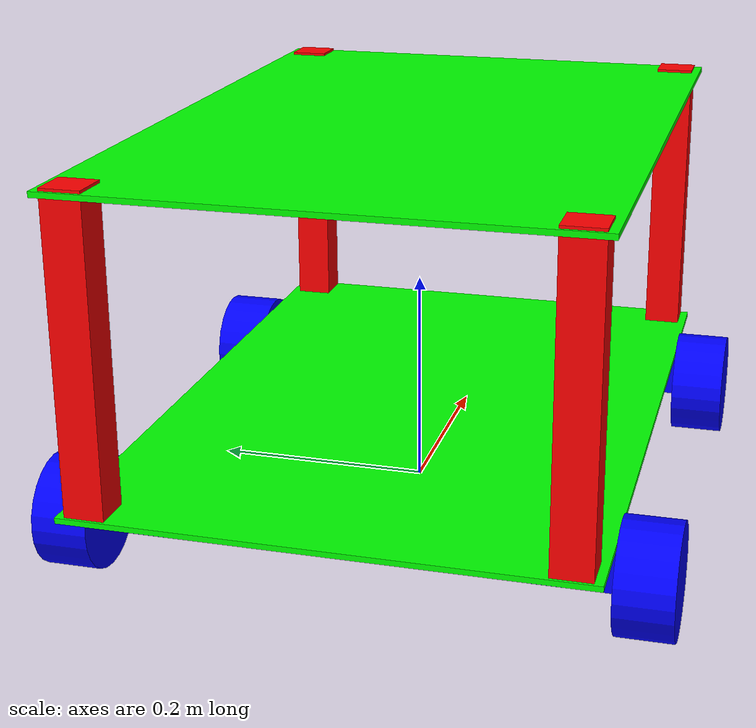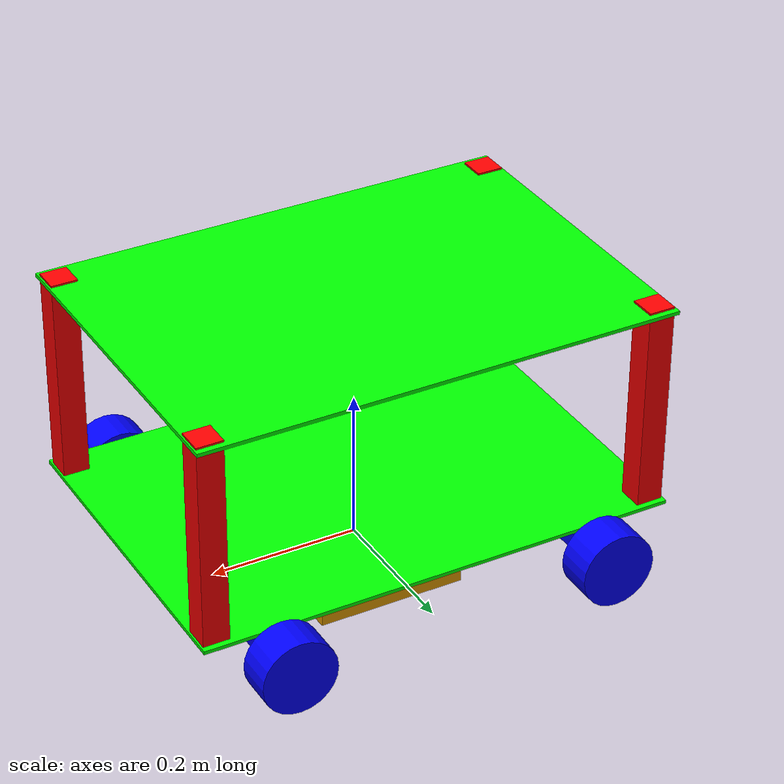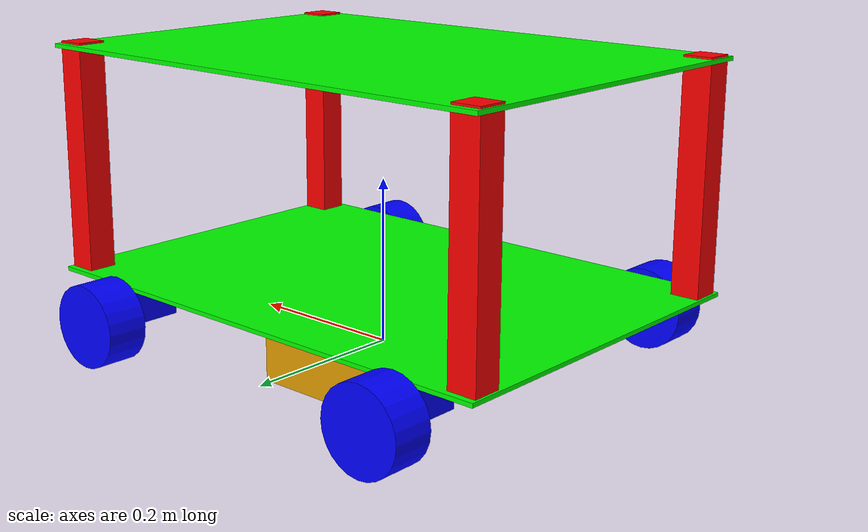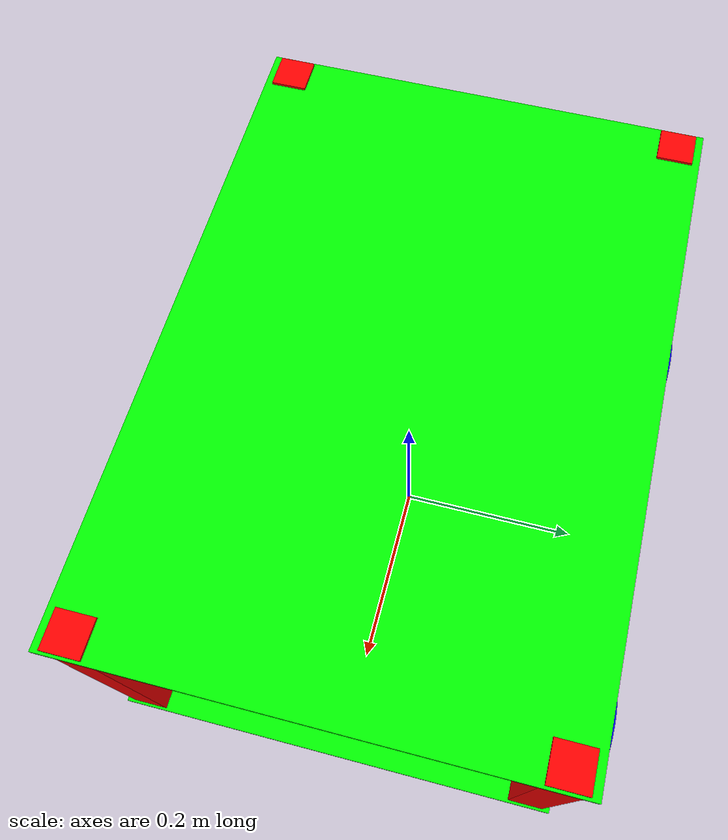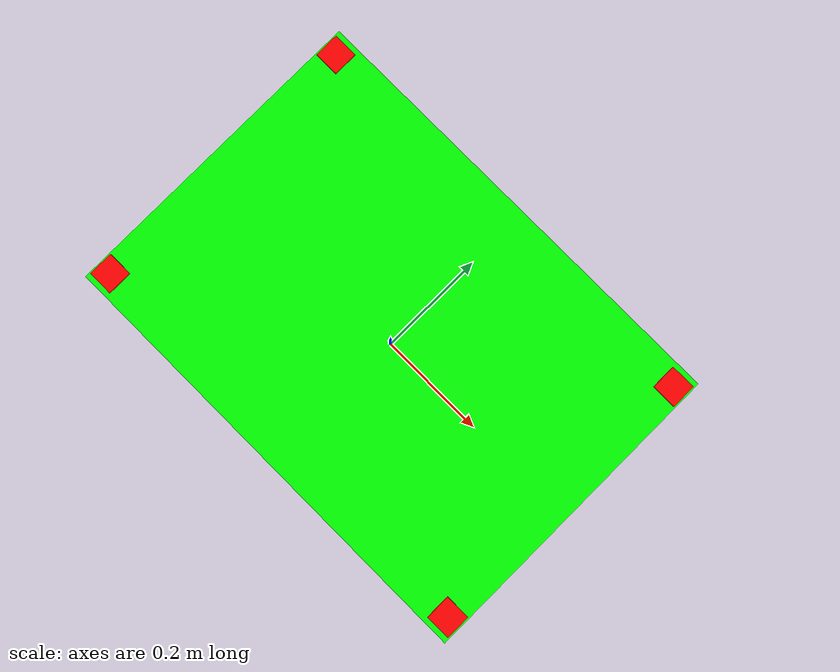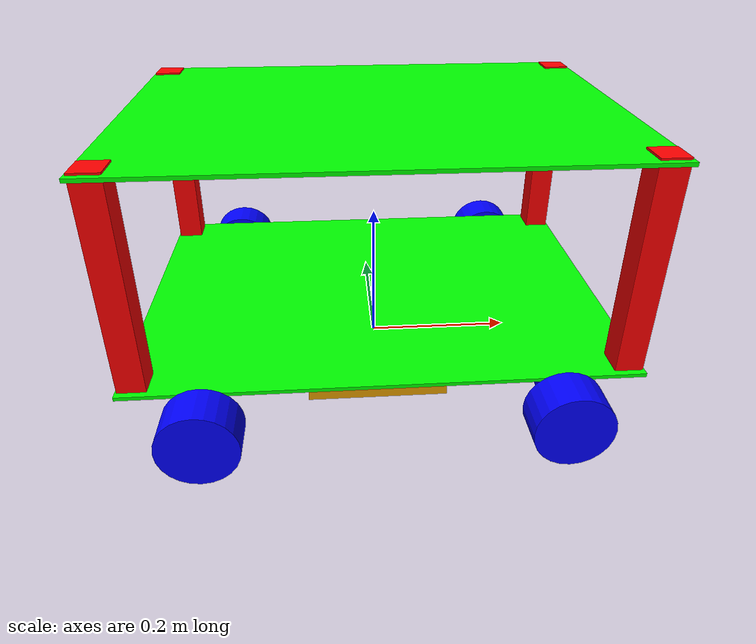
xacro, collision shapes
<?xml version="1.0" ?>

<robot name="robot" xmlns:xacro="http://ros.org/wiki/xacro">

    <link name="base_footprint">
        <collision>
        <origin rpy="0 0 0" xyz="0 0 0.0005"/>
        <geometry>
        <box size="0.2 0.2 0.1"/>
        </geometry>
        </collision>
    </link>

    <joint name="base_joint" type="fixed">
      <origin xyz="0 0 0.075" rpy="0 0 0" />
      <parent link="base_footprint"/>
      <child link="base_link" />
    </joint>

    <link name="base_link">
      <visual>
        <geometry>
	  <box size="0.64 0.45 0.005" />
        </geometry>
        <material name="green">
          <color rgba="0.0 1 0.0 1" />
        </material>
      </visual>
      <collision>
        <geometry>
          <box size="0.64 0.45 0.005" />
        </geometry>
      </collision>
      <inertial>
        <mass value="0.5" />
        <inertia ixx="0.015" ixy="0" ixz="0" iyy="0.0375" iyz="0.0" izz="0.0275" />
      </inertial>
    </link>

    <!-- SECOND_base -->

    <joint name="base_second_joint" type="fixed">
      <origin xyz="0.0 0.0 0.275" rpy="0 0 0" />
      <parent link="base_link"/>
      <child link="base_second_link"/>
    </joint>
    <link name="base_second_link">
      <visual>
        <geometry>
	  <box size="0.64 0.45 0.005" />
        </geometry>
        <material name="green">
          <color rgba="0.0 1 0.0 1" />
        </material>
      </visual>
      <collision>
        <geometry>
          <box size="0.64 0.45 0.005" />
        </geometry>
      </collision>
      <inertial>
        <mass value="0.5" />
        <inertia ixx="0.015" ixy="0" ixz="0" iyy="0.0375" iyz="0.0" izz="0.0275" />
      </inertial>
    </link>

    <!-- wheels -->

    <joint name="front_left_wheel_joint" type="fixed">
      <parent link="front_left_motor_link"/>
      <child link="front_left_wheel_link"/>
      <origin xyz="0.0 0.06 -0.015" rpy="1.57 0 0"/>
      <axis xyz="0 0 1"/>
      <limit effort="100" velocity="2.62"/>
    </joint>
    <link name="front_left_wheel_link">
      <visual>
        <geometry>
          <!--mesh filename="package://rrt_exploration_tutorials/launch/includes/meshes/wheel.dae"/-->
      	  <cylinder length="0.05" radius="0.05"/>
        </geometry>
        <material name="blue">
          <color rgba="0.0 0.0 1 1" />
        </material>
      </visual>
      <collision>
        <geometry>
          <cylinder length="0.05" radius="0.05"/>
        </geometry>
      </collision>
      <inertial>
        <mass value="0.5" />
        <inertia ixx="0.05" ixy="0" ixz="0" iyy="0.05" iyz="0.0" izz="0.05" />
      </inertial>
    </link>

    <joint name="front_right_wheel_joint" type="fixed">
      <parent link="front_right_motor_link"/>
      <child link="front_right_wheel_link"/>
      <origin xyz="0.0 -0.06 -0.015" rpy="1.57 0 0"/>
      <axis xyz="0 0 1"/>
      <limit effort="100" velocity="2.62"/>
    </joint>
    <link name="front_right_wheel_link">
      <visual>
        <geometry>
          <!--mesh filename="package://rrt_exploration_tutorials/launch/includes/meshes/wheel.dae"/-->
          <cylinder length="0.05" radius="0.05"/>
        </geometry>
        <material name="blue">
          <color rgba="0.0 0.0 1 1" />
        </material>
      </visual>
      <collision>
        <geometry>
          <cylinder length="0.05" radius="0.05"/>
        </geometry>
      </collision>
      <inertial>
        <mass value="0.5" />
        <inertia ixx="0.05" ixy="0" ixz="0" iyy="0.05" iyz="0.0" izz="0.05" />
      </inertial>
    </link>

    <joint name="back_left_wheel_joint" type="fixed">
      <parent link="back_left_motor_link"/>
      <child link="back_left_wheel_link"/>
      <origin xyz="0.0 0.06 -0.015" rpy="1.57 0 0"/>
      <axis xyz="0 0 1"/>
      <limit effort="100" velocity="2.62"/>
    </joint>
    <link name="back_left_wheel_link">
      <visual>
        <geometry>
          <!--mesh filename="package://rrt_exploration_tutorials/launch/includes/meshes/wheel.dae"/-->
          <cylinder length="0.05" radius="0.05"/>
        </geometry>
        <material name="blue">
          <color rgba="0.0 0.0 1 1" />
        </material>
      </visual>
      <collision>
        <geometry>
          <cylinder length="0.05" radius="0.05"/>
        </geometry>
      </collision>
      <inertial>
        <mass value="0.5" />
        <inertia ixx="0.05" ixy="0" ixz="0" iyy="0.05" iyz="0.0" izz="0.05" />
      </inertial>
    </link>

    <joint name="back_right_wheel_joint" type="fixed">
      <parent link="back_right_motor_link"/>
      <child link="back_right_wheel_link"/>
      <origin xyz="0.0 -0.06 -0.015" rpy="1.57 0 0"/>
      <axis xyz="0 0 1"/>
      <limit effort="100" velocity="2.62"/>
    </joint>
    <link name="back_right_wheel_link">
      <visual>
        <geometry>
          <!--mesh filename="package://rrt_exploration_tutorials/launch/includes/meshes/wheel.dae"/-->
          <cylinder length="0.05" radius="0.05"/>
        </geometry>
        <material name="blue">
          <color rgba="0.0 0.0 1 1" />
        </material>
      </visual>
      <collision>
        <geometry>
          <cylinder length="0.05" radius="0.05"/>
        </geometry>
      </collision>
      <inertial>
        <mass value="0.5" />
        <inertia ixx="0.05" ixy="0" ixz="0" iyy="0.05" iyz="0.0" izz="0.05" />
      </inertial>
    </link>

    <!-- motor -->
    <joint name="front_left_motor_joint" type="fixed">
      <parent link="base_link"/>
      <child link="front_left_motor_link"/>
      <origin xyz="0.22 0.19 -0.025" rpy="0 0 0"/>
    </joint>
    <link name="front_left_motor_link">
      <visual>
        <geometry>
          <box size="0.04 0.07 0.045" />
        </geometry>
        <material name="blue">
          <color rgba="0.0 0.0 1 1" />
        </material>
      </visual>
      <collision>
        <geometry>
          <box size="0.04 0.07 0.045" />
        </geometry>
      </collision>
      <inertial>
        <mass value="0.2" />
        <inertia ixx="0.015" ixy="0" ixz="0" iyy="0.0375" iyz="0.0" izz="0.0275" />
      </inertial>
    </link>

    <joint name="front_right_motor_joint" type="fixed">
      <parent link="base_link"/>
      <child link="front_right_motor_link"/>
      <origin xyz="0.22 -0.19 -0.025" rpy="0 0 0"/>
    </joint>
    <link name="front_right_motor_link">
      <visual>
        <geometry>
          <box size="0.04 0.07 0.045" />
        </geometry>
        <material name="blue">
          <color rgba="0.0 0.0 1 1" />
        </material>
      </visual>
      <collision>
        <geometry>
          <box size="0.04 0.07 0.045" />
        </geometry>
      </collision>
      <inertial>
        <mass value="0.2" />
        <inertia ixx="0.015" ixy="0" ixz="0" iyy="0.0375" iyz="0.0" izz="0.0275" />
      </inertial>
    </link>

    <joint name="back_left_motor_joint" type="fixed">
      <parent link="base_link"/>
      <child link="back_left_motor_link"/>
      <origin xyz="-0.22 0.19 -0.025" rpy="0 0 0"/>
    </joint>
    <link name="back_left_motor_link">
      <visual>
        <geometry>
          <box size="0.04 0.07 0.045" />
        </geometry>
        <material name="blue">
          <color rgba="0.0 0.0 1 1" />
        </material>
      </visual>
      <collision>
        <geometry>
          <box size="0.04 0.07 0.045" />
        </geometry>
      </collision>
      <inertial>
        <mass value="0.2" />
        <inertia ixx="0.015" ixy="0" ixz="0" iyy="0.0375" iyz="0.0" izz="0.0275" />
      </inertial>
    </link>

    <joint name="back_right_motor_joint" type="fixed">
      <parent link="base_link"/>
      <child link="back_right_motor_link"/>
      <origin xyz="-0.22 -0.19 -0.025" rpy="0 0 0"/>
    </joint>
    <link name="back_right_motor_link">
      <visual>
        <geometry>
          <box size="0.04 0.07 0.045" />
        </geometry>
        <material name="blue">
          <color rgba="0.0 0.0 1 1" />
        </material>
      </visual>
      <collision>
        <geometry>
          <box size="0.04 0.07 0.045" />
        </geometry>
      </collision>
      <inertial>
        <mass value="0.2" />
        <inertia ixx="0.015" ixy="0" ixz="0" iyy="0.0375" iyz="0.0" izz="0.0275" />
      </inertial>
    </link>

    <!-- Pillar -->

    <joint name="front_left_pillar_joint" type="fixed">
      <parent link="base_link"/>
      <child link="front_left_pillar_link"/>
      <origin xyz="0.3 0.2 0.14" rpy="0 0 0"/>
    </joint>
    <link name="front_left_pillar_link">
      <visual>
        <geometry>
         <box size="0.035 0.035 0.28" />
        </geometry>
        <material name="red">
          <color rgba="1 0.0 0.0 1" />
        </material>
      </visual>
      <collision>
        <geometry>
        <box size="0.035 0.035 0.28" />
        </geometry>
      </collision>
      <inertial>
        <mass value="0.1" />
        <inertia ixx="0.015" ixy="0" ixz="0" iyy="0.0375" iyz="0.0" izz="0.0275" />
      </inertial>
    </link>

    <joint name="front_right_pillar_joint" type="fixed">
      <parent link="base_link"/>
      <child link="front_right_pillar_link"/>
      <origin xyz="0.3 -0.2 0.14" rpy="0 0 0"/>
    </joint>
    <link name="front_right_pillar_link">
      <visual>
        <geometry>
         <box size="0.035 0.035 0.28" />
        </geometry>
        <material name="red">
          <color rgba="1 0.0 0.0 1" />
        </material>
      </visual>
      <collision>
        <geometry>
        <box size="0.035 0.035 0.28" />
        </geometry>
      </collision>
      <inertial>
        <mass value="0.1" />
        <inertia ixx="0.015" ixy="0" ixz="0" iyy="0.0375" iyz="0.0" izz="0.0275" />
      </inertial>
    </link>

    <joint name="back_left_pillar_joint" type="fixed">
      <parent link="base_link"/>
      <child link="back_left_pillar_link"/>
      <origin xyz="-0.3 0.2 0.14" rpy="0 0 0"/>
    </joint>
    <link name="back_left_pillar_link">
      <visual>
        <geometry>
         <box size="0.035 0.035 0.28" />
        </geometry>
        <material name="red">
          <color rgba="1 0.0 0.0 1" />
        </material>
      </visual>
      <collision>
        <geometry>
        <box size="0.035 0.035 0.28" />
        </geometry>
      </collision>
      <inertial>
        <mass value="0.1" />
        <inertia ixx="0.015" ixy="0" ixz="0" iyy="0.0375" iyz="0.0" izz="0.0275" />
      </inertial>
    </link>

    <joint name="back_right_pillar_joint" type="fixed">
      <parent link="base_link"/>
      <child link="back_right_pillar_link"/>
      <origin xyz="-0.3 -0.2 0.14" rpy="0 0 0"/>
    </joint>
    <link name="back_right_pillar_link">
      <visual>
        <geometry>
         <box size="0.035 0.035 0.28" />
        </geometry>
        <material name="red">
          <color rgba="1 0.0 0.0 1" />
        </material>
      </visual>
      <collision>
        <geometry>
        <box size="0.035 0.035 0.28" />
        </geometry>
      </collision>
      <inertial>
        <mass value="0.1" />
        <inertia ixx="0.015" ixy="0" ixz="0" iyy="0.0375" iyz="0.0" izz="0.0275" />
      </inertial>
    </link>

    <!-- sensors -->

    <joint name="laser_joint" type="fixed">
    <parent link="base_second_link" />
    <child link="laser" />
    <origin xyz="0.20 0.0 0.028" rpy="0 0 0"/>
    <axis xyz="0 1 0"/>
</joint>

<link name="laser">
    <visual>
        <geometry>
            <mesh filename="package://rrt_exploration_tutorials/launch/includes/meshes/hokuyo.dae"/>
        </geometry>
    </visual>
    <inertial>
        <mass value="0.01" />
        <inertia ixx="0.015" ixy="0" ixz="0" iyy="0.0375" iyz="0.0" izz="0.0275" />
    </inertial>
</link>

</robot>
